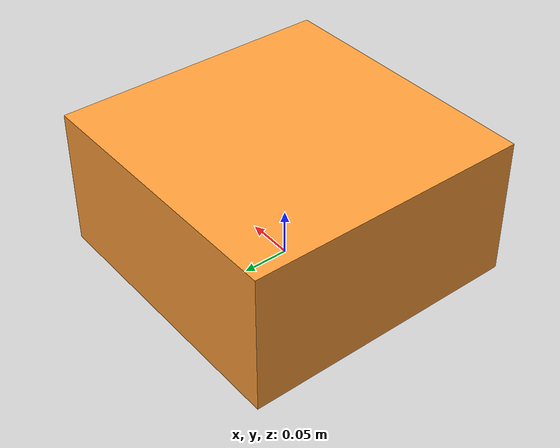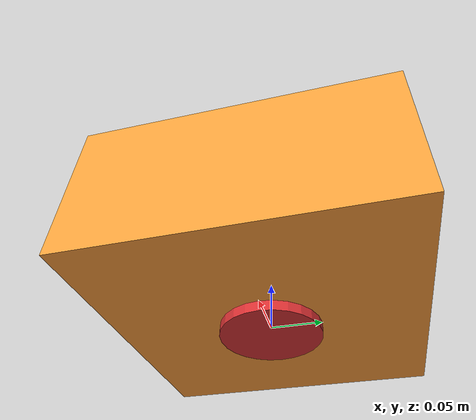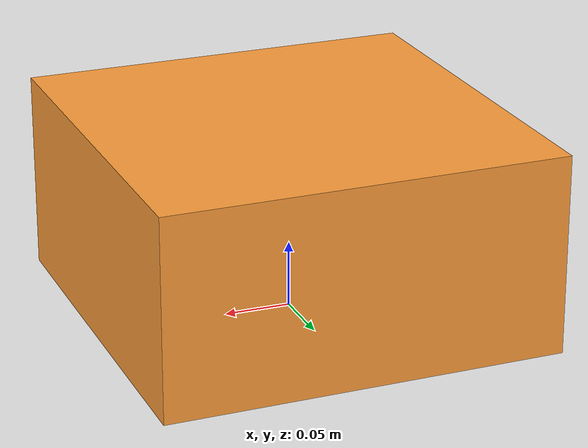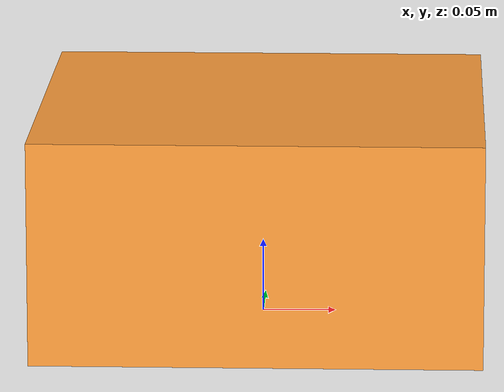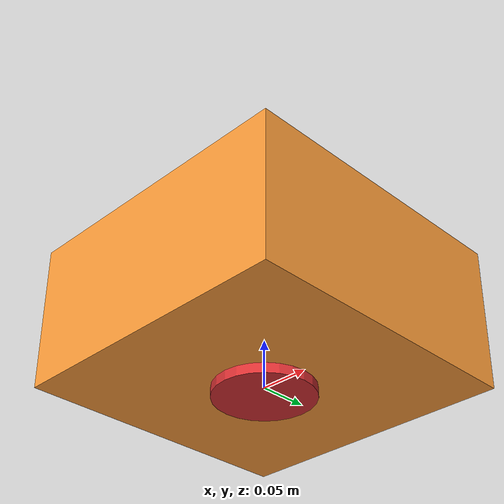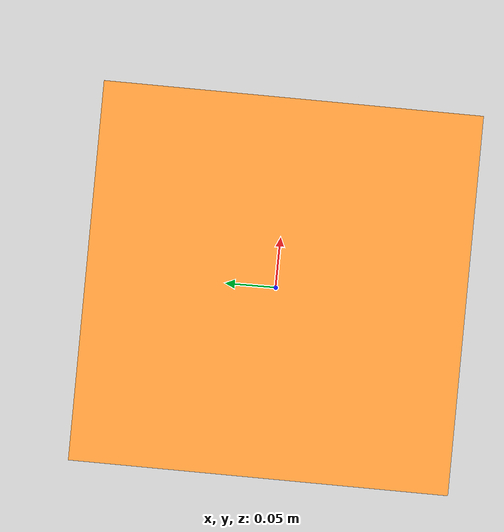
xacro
<?xml version="1.0"?>
<robot xmlns:xacro="http://www.ros.org/wiki/xacro"  name="$(arg name)">

    <xacro:arg name="name" default="robot"/>
    <xacro:arg name="width" default="0.3"/>
    <xacro:arg name="length" default="0.3"/>
    <xacro:arg name="height" default="0.15"/>
    <xacro:arg name="axle_height" default="0.075"/>

    <xacro:property name="wheel_diameter" default="${0.025+$(arg axle_height)}"/>
    <xacro:property name="wheel_width" default="0.05"/>

    <!-- Wheel seperation with trick to use as property-->
    <xacro:arg name="wheel_separation" default="$(arg width)+${wheel_width}"/>
    <xacro:property name="wheel_separation" value="${$(arg wheel_separation)}"/>

    <!-- Odometry Settings -->
    <xacro:arg name="odom_enable" default="true"/>

    <xacro:include filename="robot_core.xacro" />
    <xacro:include filename="gazebo_control.xacro" />
    <xacro:include filename="lidar.xacro" />

</robot>

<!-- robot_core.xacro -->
<robot xmlns:xacro="http://www.ros.org/wiki/xacro" >
    <xacro:include filename="inertial_macros.xacro"/>

    <material name="bright_dark_blue">
        <color rgba="0.0 0.23 0.49 1"/>
    </material>

    <material name="med_blue">
        <color rgba="0.0 0.55 1.0 1"/>
    </material>

    <material name="pink">
        <color rgba="1.0 0.45 0.71 1"/>
    </material>

    <material name="purple">
        <color rgba="0.78 0.0 1.0 1"/>
    </material>

    <material name="green">
        <color rgba="0.31 0.8 0.55 1"/>
    </material>

    <material name="orange">
        <color rgba="1.0 0.62 0.23 1"/>
    </material>

    <material name="yellow">
        <color rgba="0.98 0.91 0.35 1"/>
    </material>

    <material name="red">
        <color rgba="0.85 0.19 0.2 1"/>
    </material>

    <material name="black">
        <color rgba="0.05 0.05 0.05 1"/>
    </material>

    <!-- BASE LINK -->

    <link name="base_link"/>

    <!-- CHASSIS LINK -->

    <joint name="chassis_joint" type="fixed">
        <parent link="base_link"/>
        <child link="chassis"/>
        <origin xyz="-${$(arg length)/2} 0 0"/>
    </joint>

    <link name="chassis">
        <visual>
            <origin xyz="${$(arg length)/2} 0 ${$(arg height)/2}"/>
            <geometry>
                <box size="$(arg length) $(arg width) $(arg height)"/>
            </geometry>
            <material name="orange"/>
        </visual>
        <collision>
            <origin xyz="${$(arg length)/2} 0 ${$(arg height)/2}"/>
            <geometry>
                <box size="$(arg length) $(arg width) $(arg height)"/>
            </geometry>
        </collision>

        <xacro:inertial_box mass="50" x="$(arg length)" y="$(arg width)" z="$(arg height)">
            <origin xyz="${$(arg length)/2} 0 ${$(arg height)/2}" rpy="0 0 0"/>
        </xacro:inertial_box>
    </link>

    <gazebo reference="chassis">

    </gazebo>

    <!-- LEFT WHEEL LINK -->

    <joint name="left_wheel_joint" type="continuous">
        <parent link="base_link"/>
        <child link="left_wheel"/>
        <origin xyz="-${$(arg length)/2} ${wheel_separation/2} 0" rpy="-${pi/2} 0 0" />
        <axis xyz="0 0 1"/>
    </joint>

    <link name="left_wheel">

        <collision>
            <geometry>
                <cylinder radius="${wheel_diameter/2}" length="${wheel_width}"/>
            </geometry>
        </collision>
        <xacro:inertial_cylinder mass="0.1" length="${wheel_width}" radius="${wheel_diameter/2}">
            <origin xyz="0 0 0" rpy="0 0 0"/>
        </xacro:inertial_cylinder>
    </link>

    <gazebo reference="left_wheel">
    </gazebo>

    <!-- RIGHT WHEEL LINK -->

    <joint name="right_wheel_joint" type="continuous">
        <parent link="base_link"/>
        <child link="right_wheel"/>
        <origin xyz="-${$(arg length)/2}  -${wheel_separation/2} 0" rpy="${pi/2} 0 0" />
        <axis xyz="0 0 -1"/>
    </joint>

    <link name="right_wheel">
        <collision>
            <geometry>
                <cylinder radius="${wheel_diameter/2}" length="${wheel_width}"/>
            </geometry>
        </collision>
        <xacro:inertial_cylinder mass="0.1" length="${wheel_width}" radius="${wheel_diameter/2}">
            <origin xyz="0 0 0" rpy="0 0 0"/>
        </xacro:inertial_cylinder>
    </link>

    <gazebo reference="right_wheel">
    </gazebo>

    <!-- CASTER WHEEL LINK -->

    <joint name="caster_wheel_joint" type="fixed">
        <parent link="chassis"/>
        <child link="caster_wheel"/>
        <origin xyz="${$(arg length)*0.9} 0 0"/>
    </joint>

    <link name="caster_wheel">
        <collision>
            <geometry>
                <sphere radius="${wheel_diameter/2}"/>
            </geometry>
        </collision>
        <xacro:inertial_sphere mass="0.1" radius="${wheel_diameter/2}">
            <origin xyz="0 0 0" rpy="0 0 0"/>
        </xacro:inertial_sphere>
    </link>

    <gazebo reference="caster_wheel">
        <mu1 value="0.001"/>
        <mu2 value="0.001"/>
    </gazebo>

    <gazebo>
         <plugin
            filename="ignition-gazebo-pose-publisher-system"
            name="ignition::gazebo::systems::PosePublisher">
            <publish_link_pose>false</publish_link_pose>
            <publish_nested_model_pose>true</publish_nested_model_pose>
            <update_frequency>10</update_frequency>

        </plugin>
    </gazebo>
</robot>

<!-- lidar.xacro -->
<robot xmlns:xacro="http://www.ros.org/wiki/xacro" >
    <!--Model Shape Settings-->
    <xacro:arg name="name" default="robot"/>
    <!-- Laser Settings-->
    <xacro:arg name="laser_enable"  default="true"/>
    <xacro:arg name="laser_visualize"  default="true"/>
    <xacro:arg name="laser_update_rate"  default="10"/>
    <xacro:arg name="laser_samples"  default="360"/>
    <xacro:arg name="laser_min_angle"  default="-3.1415"/>
    <xacro:arg name="laser_max_angle"  default="3.1515"/>
    <xacro:arg name="laser_max_range"  default="6"/>
    <xacro:arg name="laser_range_resolution"  default="0.01"/>
    <xacro:arg name="laser_noise_stddev"  default="0.01"/>

    <joint name="lidar_joint" type="fixed">
        <parent link="chassis"/>
        <child link="base_laser"/>
        <origin xyz="${$(arg length)/2} 0 0.01" rpy="0 0 0"/>
    </joint>

    <link name="base_laser">
       <visual>
            <geometry>
                <cylinder radius="0.05" length="0.04"/>
            </geometry>
            <material name="red"/>
        </visual>
        <collision>
            <geometry>
                <cylinder radius="0.05" length="0.04"/>
            </geometry>
        </collision>
        <xacro:inertial_cylinder mass="0.1" length="0.04" radius="0.05">
            <origin xyz="0 0 0" rpy="0 0 0"/>
        </xacro:inertial_cylinder>
    </link>

    <gazebo reference= "base_laser">
        <material>Gazebo/Red</material>
        <xacro:if value="$(arg laser_enable)">

        <sensor name='gpu_lidar' type='gpu_lidar'>
            <always_on>true</always_on>
            <update_rate>$(arg laser_update_rate)</update_rate>
            <visualize>$(arg laser_visualize)</visualize>
            <pose>0 0 0 0 0 0</pose>
            <topic>/model/$(arg name)/scan</topic>
            <ignition_frame_id>$(arg name)/base_laser</ignition_frame_id>
            <update_rate>10</update_rate>
            <ray>
                <scan>
                    <horizontal>
                        <samples>$(arg laser_samples)</samples>
                        <resolution>1</resolution>
                        <min_angle>$(arg laser_min_angle)</min_angle>
                        <max_angle>$(arg laser_max_angle)</max_angle>
                    </horizontal>
                    <vertical>
                        <samples>1</samples>
                        <resolution>0.01</resolution>
                        <min_angle>0</min_angle>
                        <max_angle>0</max_angle>
                    </vertical>
                </scan>
                <range>
                    <min>0.1</min>
                    <max>$(arg laser_max_range)</max>
                    <resolution>$(arg laser_range_resolution)</resolution>
                </range>
                <noise>
                    <type>gaussian</type>
                    <mean>0</mean>
                    <stddev>$(arg laser_noise_stddev)</stddev>
                </noise>
            </ray>
        </sensor>
        </xacro:if>
        </gazebo>

</robot>
